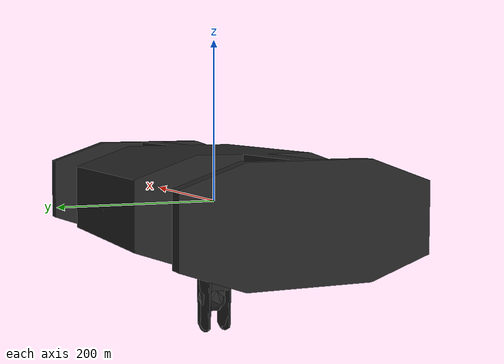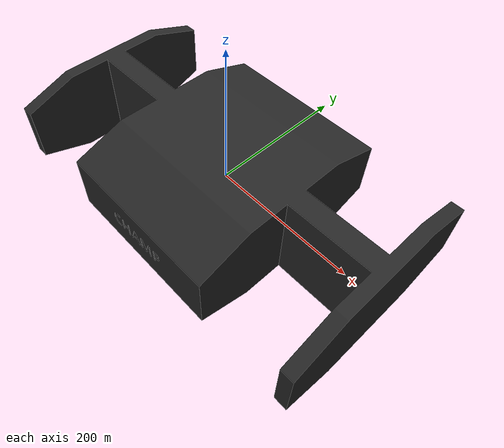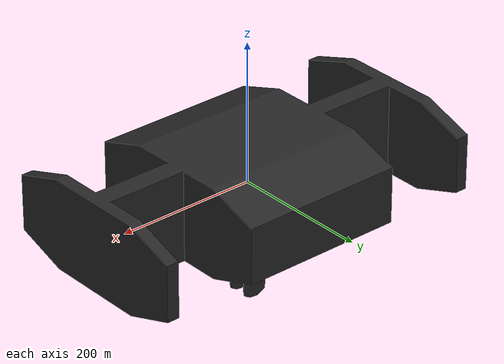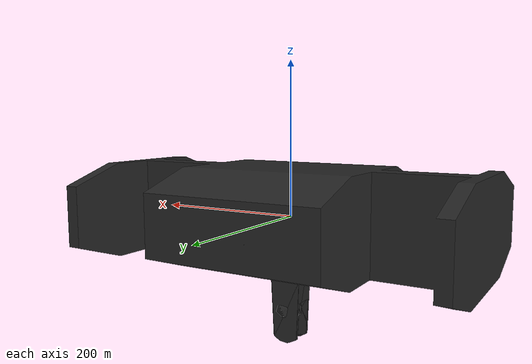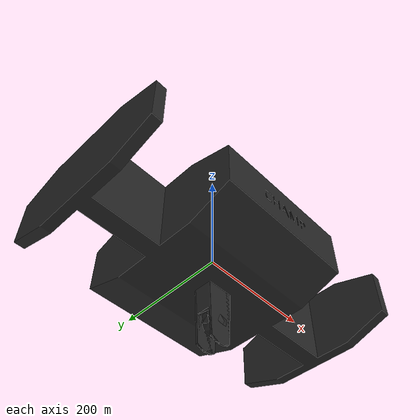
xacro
<?xml version="1.0"?>
<robot name="champ" xmlns:xacro="http://ros.org/wiki/xacro">
    <xacro:include filename="$(find champ_description)/urdf/properties.urdf.xacro" />

    <material name="black"><color rgba="0.15 0.15 0.15 1.0" /></material>

    <link name="base_link">
        <collision>
            <origin xyz="0 0 0" rpy="0 0 0" />
            <geometry>
                <mesh filename="${base_mesh_path}" />
            </geometry>
        </collision>
        <visual>
            <origin xyz="0 0 0" rpy="0 0 0" />
            <geometry>
                <mesh filename="package://champ_description/meshes/base.stl" />
            </geometry>
            <material name="black" />
        </visual>
    </link>
    <link name="base_inertia">
        <inertial>
            <origin xyz="0 0 0" />
            <mass value="${base_mass}" />
            <inertia ixx="${(1/12) * base_mass * (base_y_length * base_y_length + base_z_length * base_z_length)}" ixy="0.0" ixz="0.0"
                     iyy="${(1/12) * base_mass * (base_x_length * base_x_length + base_z_length * base_z_length)}" iyz="0.0"
                     izz="${(1/12) * base_mass * (base_x_length * base_x_length + base_y_length * base_y_length)}" />
        </inertial>
    </link>
    <joint name="base_link_to_base_inertia" type="fixed">
        <parent link="base_link"/>
        <child link="base_inertia"/>
        <origin rpy="0 0 0" xyz="0 0 0"/>
    </joint>

    <gazebo reference="base_link">
        <material>Gazebo/FlatBlack</material>
    </gazebo>

    <xacro:include filename="$(find champ_description)/urdf/leg.urdf.xacro" />

    <xacro:include filename="$(find champ_description)/urdf/accessories.urdf.xacro" />

    <xacro:champ_leg leg="lf"/>
    <xacro:champ_leg leg="lh"/>
    <xacro:champ_leg leg="rf"/>
    <xacro:champ_leg leg="rh"/>

    <gazebo>
      <plugin name="p3d_base_controller" filename="libgazebo_ros_p3d.so">
            <alwaysOn>true</alwaysOn>
            <updateRate>10.0</updateRate>
            <bodyName>base_link</bodyName>
            <topicName>odom/ground_truth</topicName>
            <gaussianNoise>0.01</gaussianNoise>
            <frameName>world</frameName>
            <xyzOffsets>0 0 0</xyzOffsets>
            <rpyOffsets>0 0 0</rpyOffsets>
        </plugin>
    </gazebo>

    <gazebo>
        <plugin name="gazebo_ros_control" filename="libgazebo_ros_control.so">
            <legacyModeNS>true</legacyModeNS>
        </plugin>
    </gazebo>
</robot>

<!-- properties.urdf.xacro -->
<robot xmlns:xacro="http://ros.org/wiki/xacro">
    <xacro:property name="base_to_hip_x" value="0.175" />
    <xacro:property name="base_to_hip_y" value="0.105" />
    <xacro:property name="hip_to_upper_leg_distance" value="0.06" />
    <xacro:property name="upper_leg_to_lower_leg_distance" value="0.141" />
    <xacro:property name="lower_leg_to_foot_distance" value="0.141" />

    <xacro:property name="hip_mesh_path" value="file://$(find champ_description)/meshes/hip.stl" />
    <xacro:property name="hip_mass" value="0.250" />
    <xacro:property name="hip_x_length" value="0.112" />
    <xacro:property name="hip_y_length" value="0.08" />
    <xacro:property name="hip_z_length" value="0.130" />

    <xacro:property name="upper_leg_mesh_path" value="file://$(find champ_description)/meshes/upper_leg_simple.stl" />
    <xacro:property name="upper_leg_mass" value="0.125" />
    <xacro:property name="upper_leg_x_length" value="0.05" />
    <xacro:property name="upper_leg_y_length" value="0.03" />
    <xacro:property name="upper_leg_z_length" value="0.1905" />

    <xacro:property name="lower_leg_mesh_path" value="file://$(find champ_description)/meshes/lower_leg_simple.stl" />
    <xacro:property name="lower_leg_mass" value="0.125" />
    <xacro:property name="lower_leg_x_length" value="0.039" />
    <xacro:property name="lower_leg_y_length" value="0.022" />
    <xacro:property name="lower_leg_z_length" value="0.156" />

    <xacro:property name="base_mesh_path" value="file://$(find champ_description)/meshes/base_simple.stl" />
    <xacro:property name="base_mass" value="2.0" />
    <xacro:property name="base_x_length" value="0.5" />
    <xacro:property name="base_y_length" value="0.29" />
    <xacro:property name="base_z_length" value="0.130" />
</robot>

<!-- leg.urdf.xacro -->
<robot xmlns:xacro="http://ros.org/wiki/xacro">
    <xacro:macro name="champ_leg" params="leg  " >

        <xacro:if value="${leg == 'lf'}">
            <xacro:property name="base_to_hip_xyz" value="${base_to_hip_x} ${base_to_hip_y} 0" />
            <xacro:property name="hip_to_upper_leg" value="${hip_to_upper_leg_distance}" />
        </xacro:if>

        <xacro:if value="${leg == 'lh'}">
            <xacro:property name="base_to_hip_xyz" value="-${base_to_hip_x} ${base_to_hip_y} 0" />
            <xacro:property name="hip_to_upper_leg" value="${hip_to_upper_leg_distance}" />
        </xacro:if>

        <xacro:if value="${leg == 'rf'}">
            <xacro:property name="base_to_hip_xyz" value="${base_to_hip_x} -${base_to_hip_y} 0" />
            <xacro:property name="hip_to_upper_leg" value="-${hip_to_upper_leg_distance}" />
        </xacro:if>

        <xacro:if value="${leg == 'rh'}">
            <xacro:property name="base_to_hip_xyz" value="-${base_to_hip_x} -${base_to_hip_y} 0" />
            <xacro:property name="hip_to_upper_leg" value="-${hip_to_upper_leg_distance}" />
        </xacro:if>

        <link name="${leg}_hip_debug_link"/>

        <link name="${leg}_hip_link">
            <inertial>
                <mass value="${hip_mass}" />
                <inertia ixx="${(1/12) * hip_mass * (hip_y_length * hip_y_length + hip_z_length * hip_z_length)}" ixy="0.0" ixz="0.0"
                         iyy="${(1/12) * hip_mass * (hip_x_length * hip_x_length + hip_z_length * hip_z_length)}" iyz="0.0"
                         izz="${(1/12) * hip_mass * (hip_x_length * hip_x_length + hip_y_length * hip_y_length)}" />
            </inertial>
            <collision>
                <origin xyz="0 0 0" rpy="0 0 0" />
                <geometry>
                    <mesh filename="${hip_mesh_path}" />
                </geometry>
            </collision>
            <visual>
                <origin xyz="0 0 0" rpy="0 0 0" />
                <geometry>
                    <mesh filename="${hip_mesh_path}" />
                </geometry>
                <material name="black" />
            </visual>
        </link>
        <gazebo reference="${leg}_hip_link">
            <material>Gazebo/FlatBlack</material>
        </gazebo>

        <link name="${leg}_upper_leg_link">
            <inertial>
                <origin xyz="0 0 -${(upper_leg_z_length / 2) - ((upper_leg_z_length - upper_leg_to_lower_leg_distance) / 2)}" />
                <mass value="${upper_leg_mass}" />
                <inertia ixx="${(1/12) * upper_leg_mass * (upper_leg_y_length * upper_leg_y_length + upper_leg_z_length * upper_leg_z_length)}" ixy="0.0" ixz="0.0"
                         iyy="${(1/12) * upper_leg_mass * (upper_leg_x_length * upper_leg_x_length + upper_leg_z_length * upper_leg_z_length)}" iyz="0.0"
                         izz="${(1/12) * upper_leg_mass * (upper_leg_x_length * upper_leg_x_length + upper_leg_y_length * upper_leg_y_length)}" />
            </inertial>
            <collision>
                <origin xyz="0 0 0" rpy="0 0 0" />
                <geometry>
                    <mesh filename="${upper_leg_mesh_path}" />
                </geometry>
            </collision>
            <visual>
                <origin xyz="0 0 0" rpy="0 0 0" />
                <geometry>
                    <mesh filename="${upper_leg_mesh_path}" />
                </geometry>
                <material name="black" />
            </visual>
        </link>
        <gazebo reference="${leg}_upper_leg_link">
            <material>Gazebo/FlatBlack</material>
        </gazebo>

        <link name="${leg}_lower_leg_link">
            <inertial>
                <origin xyz="0 0 -${(lower_leg_to_foot_distance - (lower_leg_z_length - lower_leg_to_foot_distance)) / 2}" />
                <mass value="${lower_leg_mass}" />
                <inertia ixx="${(1/12) * lower_leg_mass * (lower_leg_y_length * lower_leg_y_length + lower_leg_z_length * lower_leg_z_length)}" ixy="0.0" ixz="0.0"
                         iyy="${(1/12) * lower_leg_mass * (lower_leg_x_length * lower_leg_x_length + lower_leg_z_length * lower_leg_z_length)}" iyz="0.0"
                         izz="${(1/12) * lower_leg_mass * (lower_leg_x_length * lower_leg_x_length + lower_leg_y_length * lower_leg_y_length)}" />
            </inertial>
            <collision>
                <origin xyz="0 0 0" rpy="0 0 0" />
                <geometry>
                    <mesh filename="${lower_leg_mesh_path}" />
                </geometry>
            </collision>
            <visual>
                <origin xyz="0 0 0" rpy="0 0 0" />
                <geometry>
                    <mesh filename="${lower_leg_mesh_path}" />
                </geometry>
                <material name="black" />
            </visual>
        </link>
        <gazebo reference="${leg}_lower_leg_link">
            <kp>1000000.0</kp>
            <kd>1.0</kd>
            <mu1>0.8</mu1>
            <mu2>0.8</mu2>
            <maxVel>0.0</maxVel>
            <minDepth>0.001</minDepth>
            <material>Gazebo/FlatBlack</material>
        </gazebo>

        <link name="${leg}_foot_link" />

        <joint name="${leg}_debug_joint" type="fixed">
            <parent link="base_link" />
            <child link="${leg}_hip_debug_link" />
            <origin xyz="${base_to_hip_xyz}" rpy="0 0 0" />
        </joint>

        <joint name="${leg}_hip_joint" type="revolute">
            <axis xyz="1 0 0" />
            <limit effort="25" lower="-${pi}" upper="${pi}" velocity="1.5" />
            <parent link="base_link" />
            <child link="${leg}_hip_link" />
            <origin xyz="${base_to_hip_xyz}" rpy="0 0 0" />
        </joint>

        <joint name="${leg}_upper_leg_joint" type="revolute">
            <axis xyz="0 1 0" />
            <limit effort="25" lower="-${pi}" upper="${pi}" velocity="1.5" />
            <parent link="${leg}_hip_link" />
            <child link="${leg}_upper_leg_link" />
            <origin xyz="0 ${hip_to_upper_leg} 0" rpy="0 0 0" />
        </joint>

        <joint name="${leg}_lower_leg_joint" type="revolute">
            <axis xyz="0 1 0" />
            <limit effort="25" lower="-${pi}" upper="${pi}" velocity="1.5" />
            <parent link="${leg}_upper_leg_link" />
            <child link="${leg}_lower_leg_link" />
            <origin xyz="0 0 -${upper_leg_to_lower_leg_distance}" rpy="0 0 0" />
        </joint>

        <joint name="${leg}_foot_joint" type="fixed">
            <parent link="${leg}_lower_leg_link" />
            <child link="${leg}_foot_link" />
            <origin xyz="0 0 -${lower_leg_to_foot_distance}" rpy="0 0 0" />
        </joint>

        <transmission name="${leg}_hip_joint_trans">
            <type>transmission_interface/SimpleTransmission</type>
            <joint name="${leg}_hip_joint">
                <hardwareInterface>hardware_interface/EffortJointInterface</hardwareInterface>
            </joint>
            <actuator name="${leg}_hip_joint_motor">
                <hardwareInterface>hardware_interface/EffortJointInterface</hardwareInterface>
                <mechanicalReduction>1</mechanicalReduction>
            </actuator>
        </transmission>

        <transmission name="${leg}_upper_leg_joint_trans">
            <type>transmission_interface/SimpleTransmission</type>
            <joint name="${leg}_upper_leg_joint">
                <hardwareInterface>hardware_interface/EffortJointInterface</hardwareInterface>
            </joint>
            <actuator name="${leg}_upper_leg_joint_motor">
                <hardwareInterface>hardware_interface/EffortJointInterface</hardwareInterface>
                <mechanicalReduction>1</mechanicalReduction>
            </actuator>
        </transmission>

        <transmission name="${leg}_lower_leg_joint_trans">
            <type>transmission_interface/SimpleTransmission</type>
            <joint name="${leg}_lower_leg_joint">
                <hardwareInterface>hardware_interface/EffortJointInterface</hardwareInterface>
            </joint>
            <actuator name="${leg}_lower_joint_motor">
                <hardwareInterface>hardware_interface/EffortJointInterface</hardwareInterface>
                <mechanicalReduction>1</mechanicalReduction>
            </actuator>
        </transmission>
    </xacro:macro>
</robot>
